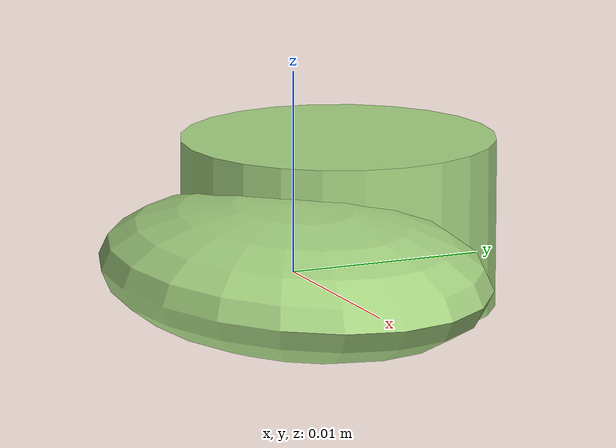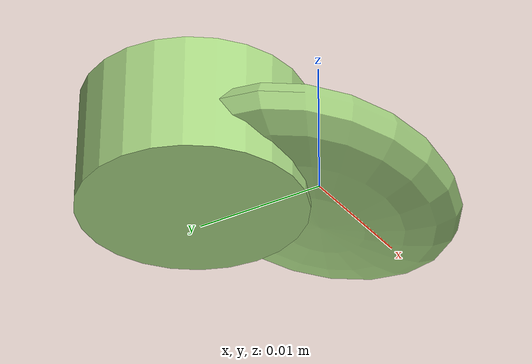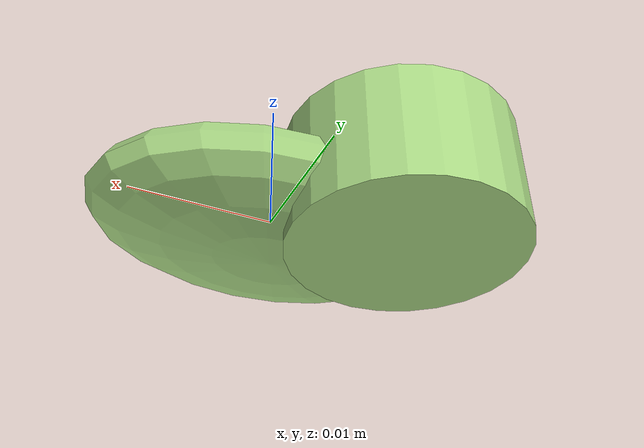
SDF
<?xml version="1.0" ?>
<!-- |    This document was autogenerated by xmacro from data/veggie_template/veggie_base.sdf.xacro  | -->
<!-- |    EDITING THIS FILE BY HAND IS NOT RECOMMENDED                                               | -->
<sdf version="1.8">
	<!-- Parameters -->
	<!-- Base -->
	<!-- Joint 0 -->
	<!-- Link 1 -->
	<!-- Joint 1 -->
	<!-- Link 2 -->
	<!-- Primitives -->
	<!-- All dimensions are half -->
	<!-- Object -->
	<model name="veggie">
		<!-- link0 -->
		<link name="link0">
			<inertial>
				<mass>0.0016337381294938588</mass>
				<inertia>
					<ixx>3.0115687217523334e-08</ixx>
					<ixy>0</ixy>
					<ixz>0</ixz>
					<iyy>5.7122821656790235e-08</iyy>
					<iyz>0</iyz>
					<izz>7.968491959526087e-08</izz>
				</inertia>
			</inertial>
			<visual name="link0_visual">
				<pose>0 0 0 0 0 0</pose>
				<geometry>
					<ellipsoid>
						<radii>0.01277746852782483 0.008978267385265169 0.0033998164049502165</radii>
					</ellipsoid>
				</geometry>
				<material>
					<ambient>0.659 0.839 0.514 1</ambient>
					<diffuse>0.659 0.839 0.514 1</diffuse>
					<specular>0 0 0 0</specular>
					<emissive>0 0 0 1</emissive>
				</material>
			</visual>
			<collision name="link0_collision">
				<pose>0 0 0 0 0 0 </pose>
				<geometry>
					<ellipsoid>
						<radii>0.01277746852782483 0.008978267385265169 0.0033998164049502165</radii>
					</ellipsoid>
				</geometry>
			</collision>
		</link>
		<!-- link1 -->
		<joint name="joint0" type="fixed">
			<pose relative_to="link0">-0.007229252635467153 0.005725214254662448 0.0005333432053121871 0.0 0.0 0.0</pose>
			<parent>link0</parent>
			<child>link1</child>
		</joint>
		<link name="link1">
			<pose relative_to="joint0">0 0 0 0 0 0</pose>
			<inertial>
				<mass>0.00176358472058349</mass>
				<inertia>
					<ixx>3.9602317512402766e-08</ixx>
					<ixy>0</ixy>
					<ixz>0</ixz>
					<iyy>3.9602317512402766e-08</iyy>
					<iyz>0</iyz>
					<izz>5.7164156293866545e-08</izz>
				</inertia>
			</inertial>
			<visual name="link1_visual">
				<pose>0 0 0 0 0 0</pose>
				<geometry>
					<cylinder>
						<radius>0.00805153588825704</radius>
						<length>0.008659403426368128</length>
					</cylinder>
				</geometry>
				<material>
					<ambient>0.659 0.839 0.514 1</ambient>
					<diffuse>0.659 0.839 0.514 1</diffuse>
					<specular>0 0 0 0</specular>
					<emissive>0 0 0 1</emissive>
				</material>
			</visual>
			<collision name="link1_collision">
				<pose>0 0 0 0 0 0 </pose>
				<geometry>
					<cylinder>
						<radius>0.00805153588825704</radius>
						<length>0.008659403426368128</length>
					</cylinder>
				</geometry>
			</collision>
		</link>
		<!-- link2 -->
	</model>
</sdf>
